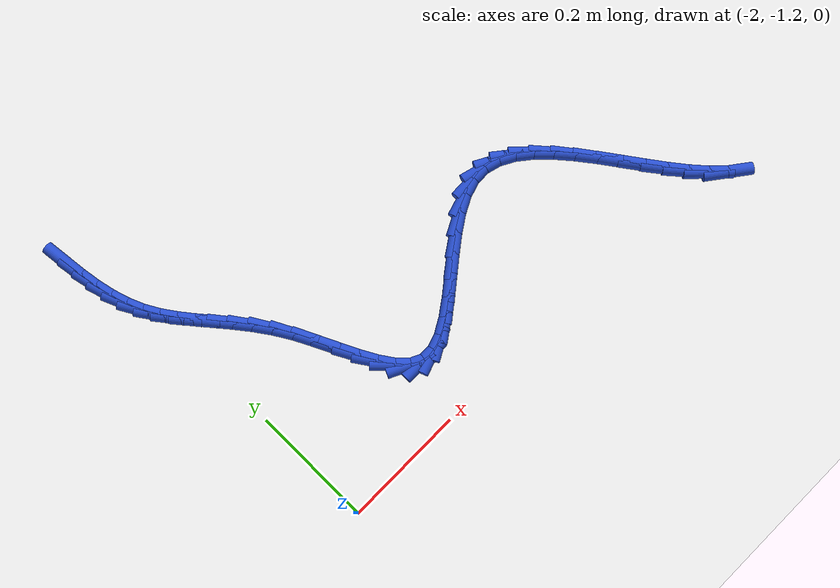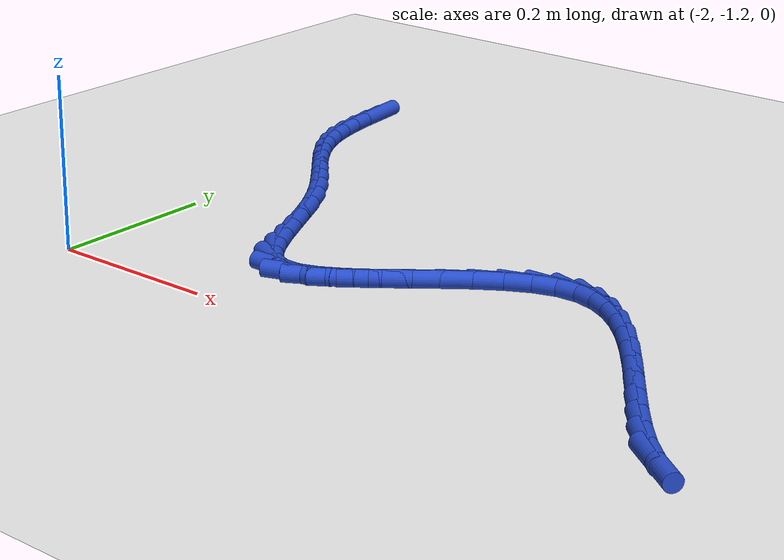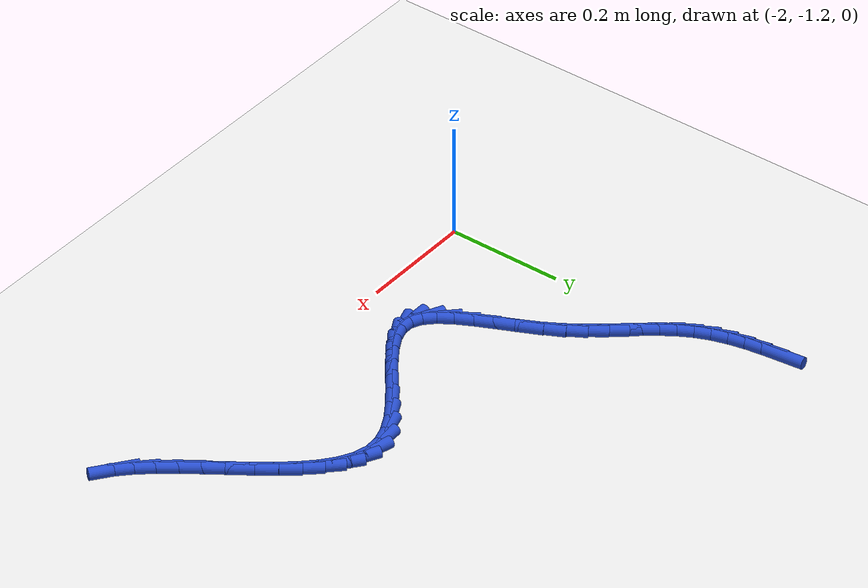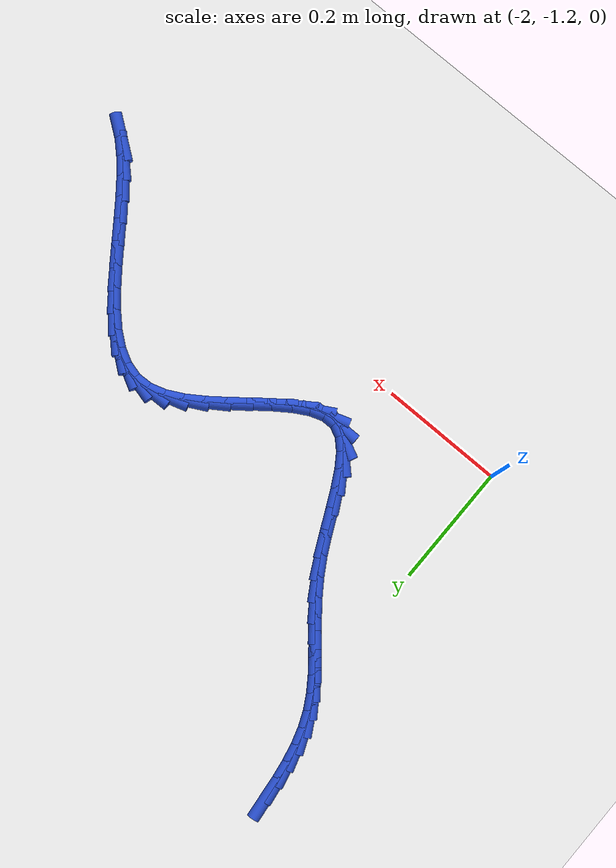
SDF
<sdf version="1.6">
 <world name="default">
  <model name="ground_plane">
   <static>1</static>
   <link name="link">
    <collision name="collision">
     <geometry><plane><normal>0 0 1</normal><size>100 100</size></plane></geometry>
     <surface><friction><ode><mu>100</mu><mu2>50</mu2></ode></friction></surface>
    </collision>
    <visual name="visual">
     <cast_shadows>0</cast_shadows>
     <geometry><plane><normal>0 0 1</normal><size>100 100</size></plane></geometry>
     <material>
      <script><uri>file://media/materials/scripts/gazebo.material</uri><name>Gazebo/WhiteGlow</name></script>
     </material>
    </visual>
   </link>
  </model>
  <model name="line">
   <link name="link_151">
    <pose>-2.048002126184385 -0.6055662148019829 0.01 0 1.57 -1.4592719948783006</pose>
    <collision name="collision">
     <geometry><cylinder><radius>0.01</radius><length>0.08</length></cylinder></geometry>
    </collision>
    <visual name="visual">
     <material>
      <script><name>Gazebo/Blue</name><uri>file://media/materials/scripts/gazebo.material</uri></script>
     </material>
     <geometry><cylinder><radius>0.01</radius><length>0.08</length></cylinder></geometry>
    </visual>
   </link>
   <link name="link_152">
    <pose>-2.0446755845035516 -0.635270394074086 0.01 0 1.57 -1.4155763640237753</pose>
    <collision name="collision">
     <geometry><cylinder><radius>0.01</radius><length>0.08</length></cylinder></geometry>
    </collision>
    <visual name="visual">
     <material>
      <script><name>Gazebo/Blue</name><uri>file://media/materials/scripts/gazebo.material</uri></script>
     </material>
     <geometry><cylinder><radius>0.01</radius><length>0.08</length></cylinder></geometry>
    </visual>
   </link>
   <link name="link_153">
    <pose>-2.0401504650627587 -0.6641888351204418 0.01 0 1.57 -1.3536229536578306</pose>
    <collision name="collision">
     <geometry><cylinder><radius>0.01</radius><length>0.08</length></cylinder></geometry>
    </collision>
    <visual name="visual">
     <material>
      <script><name>Gazebo/Blue</name><uri>file://media/materials/scripts/gazebo.material</uri></script>
     </material>
     <geometry><cylinder><radius>0.01</radius><length>0.08</length></cylinder></geometry>
    </visual>
   </link>
   <link name="link_154">
    <pose>-2.0339959599238697 -0.692081029527226 0.01 0 1.57 -1.2715339793312446</pose>
    <collision name="collision">
     <geometry><cylinder><radius>0.01</radius><length>0.08</length></cylinder></geometry>
    </collision>
    <visual name="visual">
     <material>
      <script><name>Gazebo/Blue</name><uri>file://media/materials/scripts/gazebo.material</uri></script>
     </material>
     <geometry><cylinder><radius>0.01</radius><length>0.08</length></cylinder></geometry>
    </visual>
   </link>
   <link name="link_155">
    <pose>-2.025781261148749 -0.7187064688806147 0.01 0 1.57 -1.1679099657223009</pose>
    <collision name="collision">
     <geometry><cylinder><radius>0.01</radius><length>0.08</length></cylinder></geometry>
    </collision>
    <visual name="visual">
     <material>
      <script><name>Gazebo/Blue</name><uri>file://media/materials/scripts/gazebo.material</uri></script>
     </material>
     <geometry><cylinder><radius>0.01</radius><length>0.08</length></cylinder></geometry>
    </visual>
   </link>
   <link name="link_156">
    <pose>-2.0150758121119563 -0.7438248562406098 0.01 0 1.57 -1.0537852789405744</pose>
    <collision name="collision">
     <geometry><cylinder><radius>0.01</radius><length>0.08</length></cylinder></geometry>
    </collision>
    <visual name="visual">
     <material>
      <script><name>Gazebo/Blue</name><uri>file://media/materials/scripts/gazebo.material</uri></script>
     </material>
     <geometry><cylinder><radius>0.01</radius><length>0.08</length></cylinder></geometry>
    </visual>
   </link>
   <link name="link_157">
    <pose>-2.0016776640807015 -0.7673882629240989 0.01 0 1.57 -0.9634488566566226</pose>
    <collision name="collision">
     <geometry><cylinder><radius>0.01</radius><length>0.08</length></cylinder></geometry>
    </collision>
    <visual name="visual">
     <material>
      <script><name>Gazebo/Blue</name><uri>file://media/materials/scripts/gazebo.material</uri></script>
     </material>
     <geometry><cylinder><radius>0.01</radius><length>0.08</length></cylinder></geometry>
    </visual>
   </link>
   <link name="link_158">
    <pose>-1.9860352534280554 -0.7898960442794605 0.01 0 1.57 -0.904833447612786</pose>
    <collision name="collision">
     <geometry><cylinder><radius>0.01</radius><length>0.08</length></cylinder></geometry>
    </collision>
    <visual name="visual">
     <material>
      <script><name>Gazebo/Blue</name><uri>file://media/materials/scripts/gazebo.material</uri></script>
     </material>
     <geometry><cylinder><radius>0.01</radius><length>0.08</length></cylinder></geometry>
    </visual>
   </link>
   <link name="link_159">
    <pose>-1.968711904618957 -0.8119442313284897 0.01 0 1.57 -0.8772889792458376</pose>
    <collision name="collision">
     <geometry><cylinder><radius>0.01</radius><length>0.08</length></cylinder></geometry>
    </collision>
    <visual name="visual">
     <material>
      <script><name>Gazebo/Blue</name><uri>file://media/materials/scripts/gazebo.material</uri></script>
     </material>
     <geometry><cylinder><radius>0.01</radius><length>0.08</length></cylinder></geometry>
    </visual>
   </link>
   <link name="link_160">
    <pose>-1.9502709421183484 -0.834128855092982 0.01 0 1.57 -0.8786989180588132</pose>
    <collision name="collision">
     <geometry><cylinder><radius>0.01</radius><length>0.08</length></cylinder></geometry>
    </collision>
    <visual name="visual">
     <material>
      <script><name>Gazebo/Blue</name><uri>file://media/materials/scripts/gazebo.material</uri></script>
     </material>
     <geometry><cylinder><radius>0.01</radius><length>0.08</length></cylinder></geometry>
    </visual>
   </link>
   <link name="link_161">
    <pose>-1.931275690391167 -0.8570459465947311 0.01 0 1.57 -0.9064584646098841</pose>
    <collision name="collision">
     <geometry><cylinder><radius>0.01</radius><length>0.08</length></cylinder></geometry>
    </collision>
    <visual name="visual">
     <material>
      <script><name>Gazebo/Blue</name><uri>file://media/materials/scripts/gazebo.material</uri></script>
     </material>
     <geometry><cylinder><radius>0.01</radius><length>0.08</length></cylinder></geometry>
    </visual>
   </link>
   <link name="link_162">
    <pose>-1.9122894739023553 -0.881291536855533 0.01 0 1.57 -0.9576440181246736</pose>
    <collision name="collision">
     <geometry><cylinder><radius>0.01</radius><length>0.08</length></cylinder></geometry>
    </collision>
    <visual name="visual">
     <material>
      <script><name>Gazebo/Blue</name><uri>file://media/materials/scripts/gazebo.material</uri></script>
     </material>
     <geometry><cylinder><radius>0.01</radius><length>0.08</length></cylinder></geometry>
    </visual>
   </link>
   <link name="link_163">
    <pose>-1.8938756171168518 -0.9074616568971822 0.01 0 1.57 -1.0283787974475684</pose>
    <collision name="collision">
     <geometry><cylinder><radius>0.01</radius><length>0.08</length></cylinder></geometry>
    </collision>
    <visual name="visual">
     <material>
      <script><name>Gazebo/Blue</name><uri>file://media/materials/scripts/gazebo.material</uri></script>
     </material>
     <geometry><cylinder><radius>0.01</radius><length>0.08</length></cylinder></geometry>
    </visual>
   </link>
   <link name="link_164">
    <pose>-1.8765911951082455 -0.9361389950350055 0.01 0 1.57 -1.0934740201440216</pose>
    <collision name="collision">
     <geometry><cylinder><radius>0.01</radius><length>0.08</length></cylinder></geometry>
    </collision>
    <visual name="visual">
     <material>
      <script><name>Gazebo/Blue</name><uri>file://media/materials/scripts/gazebo.material</uri></script>
     </material>
     <geometry><cylinder><radius>0.01</radius><length>0.08</length></cylinder></geometry>
    </visual>
   </link>
   <link name="link_165">
    <pose>-1.860597662410546 -0.9670615735305276 0.01 0 1.57 -1.1229495753236454</pose>
    <collision name="collision">
     <geometry><cylinder><radius>0.01</radius><length>0.08</length></cylinder></geometry>
    </collision>
    <visual name="visual">
     <material>
      <script><name>Gazebo/Blue</name><uri>file://media/materials/scripts/gazebo.material</uri></script>
     </material>
     <geometry><cylinder><radius>0.01</radius><length>0.08</length></cylinder></geometry>
    </visual>
   </link>
   <link name="link_166">
    <pose>-1.8454310794291806 -0.9986321725690404 0.01 0 1.57 -1.1175062051475055</pose>
    <collision name="collision">
     <geometry><cylinder><radius>0.01</radius><length>0.08</length></cylinder></geometry>
    </collision>
    <visual name="visual">
     <material>
      <script><name>Gazebo/Blue</name><uri>file://media/materials/scripts/gazebo.material</uri></script>
     </material>
     <geometry><cylinder><radius>0.01</radius><length>0.08</length></cylinder></geometry>
    </visual>
   </link>
   <link name="link_167">
    <pose>-1.830572259763093 -1.0291356181414872 0.01 0 1.57 -1.0728509777916235</pose>
    <collision name="collision">
     <geometry><cylinder><radius>0.01</radius><length>0.08</length></cylinder></geometry>
    </collision>
    <visual name="visual">
     <material>
      <script><name>Gazebo/Blue</name><uri>file://media/materials/scripts/gazebo.material</uri></script>
     </material>
     <geometry><cylinder><radius>0.01</radius><length>0.08</length></cylinder></geometry>
    </visual>
   </link>
   <link name="link_168">
    <pose>-1.815502017011229 -1.0568567362388122 0.01 0 1.57 -0.9733608106361504</pose>
    <collision name="collision">
     <geometry><cylinder><radius>0.01</radius><length>0.08</length></cylinder></geometry>
    </collision>
    <visual name="visual">
     <material>
      <script><name>Gazebo/Blue</name><uri>file://media/materials/scripts/gazebo.material</uri></script>
     </material>
     <geometry><cylinder><radius>0.01</radius><length>0.08</length></cylinder></geometry>
    </visual>
   </link>
   <link name="link_169">
    <pose>-1.7997011647725338 -1.0800803528519582 0.01 0 1.57 -0.7842324224687242</pose>
    <collision name="collision">
     <geometry><cylinder><radius>0.01</radius><length>0.08</length></cylinder></geometry>
    </collision>
    <visual name="visual">
     <material>
      <script><name>Gazebo/Blue</name><uri>file://media/materials/scripts/gazebo.material</uri></script>
     </material>
     <geometry><cylinder><radius>0.01</radius><length>0.08</length></cylinder></geometry>
    </visual>
   </link>
   <link name="link_170">
    <pose>-1.7826505166459545 -1.0970912939718689 0.01 0 1.57 -0.44966304437040805</pose>
    <collision name="collision">
     <geometry><cylinder><radius>0.01</radius><length>0.08</length></cylinder></geometry>
    </collision>
    <visual name="visual">
     <material>
      <script><name>Gazebo/Blue</name><uri>file://media/materials/scripts/gazebo.material</uri></script>
     </material>
     <geometry><cylinder><radius>0.01</radius><length>0.08</length></cylinder></geometry>
    </visual>
   </link>
   <link name="link_171">
    <pose>-1.7638308876311424 -1.1061743912815523 0.01 0 1.57 -0.0024894665198785526</pose>
    <collision name="collision">
     <geometry><cylinder><radius>0.01</radius><length>0.08</length></cylinder></geometry>
    </collision>
    <visual name="visual">
     <material>
      <script><name>Gazebo/Blue</name><uri>file://media/materials/scripts/gazebo.material</uri></script>
     </material>
     <geometry><cylinder><radius>0.01</radius><length>0.08</length></cylinder></geometry>
    </visual>
   </link>
   <link name="link_172">
    <pose>-1.7428737155164788 -1.1062265635676614 0.01 0 1.57 0.3277682510680645</pose>
    <collision name="collision">
     <geometry><cylinder><radius>0.01</radius><length>0.08</length></cylinder></geometry>
    </collision>
    <visual name="visual">
     <material>
      <script><name>Gazebo/Blue</name><uri>file://media/materials/scripts/gazebo.material</uri></script>
     </material>
     <geometry><cylinder><radius>0.01</radius><length>0.08</length></cylinder></geometry>
    </visual>
   </link>
   <link name="link_173">
    <pose>-1.7199753479913178 -1.0984403587711404 0.01 0 1.57 0.5156878822753701</pose>
    <collision name="collision">
     <geometry><cylinder><radius>0.01</radius><length>0.08</length></cylinder></geometry>
    </collision>
    <visual name="visual">
     <material>
      <script><name>Gazebo/Blue</name><uri>file://media/materials/scripts/gazebo.material</uri></script>
     </material>
     <geometry><cylinder><radius>0.01</radius><length>0.08</length></cylinder></geometry>
    </visual>
   </link>
   <link name="link_174">
    <pose>-1.6954645440787448 -1.084546405892506 0.01 0 1.57 0.6162964483420006</pose>
    <collision name="collision">
     <geometry><cylinder><radius>0.01</radius><length>0.08</length></cylinder></geometry>
    </collision>
    <visual name="visual">
     <material>
      <script><name>Gazebo/Blue</name><uri>file://media/materials/scripts/gazebo.material</uri></script>
     </material>
     <geometry><cylinder><radius>0.01</radius><length>0.08</length></cylinder></geometry>
    </visual>
   </link>
   <link name="link_175">
    <pose>-1.6696700628018462 -1.0662753339322746 0.01 0 1.57 0.6636576926876798</pose>
    <collision name="collision">
     <geometry><cylinder><radius>0.01</radius><length>0.08</length></cylinder></geometry>
    </collision>
    <visual name="visual">
     <material>
      <script><name>Gazebo/Blue</name><uri>file://media/materials/scripts/gazebo.material</uri></script>
     </material>
     <geometry><cylinder><radius>0.01</radius><length>0.08</length></cylinder></geometry>
    </visual>
   </link>
   <link name="link_176">
    <pose>-1.6429206631837088 -1.0453577718909632 0.01 0 1.57 0.6732462824696522</pose>
    <collision name="collision">
     <geometry><cylinder><radius>0.01</radius><length>0.08</length></cylinder></geometry>
    </collision>
    <visual name="visual">
     <material>
      <script><name>Gazebo/Blue</name><uri>file://media/materials/scripts/gazebo.material</uri></script>
     </material>
     <geometry><cylinder><radius>0.01</radius><length>0.08</length></cylinder></geometry>
    </visual>
   </link>
   <link name="link_177">
    <pose>-1.615545104247419 -1.0235243487690888 0.01 0 1.57 0.6495773302209041</pose>
    <collision name="collision">
     <geometry><cylinder><radius>0.01</radius><length>0.08</length></cylinder></geometry>
    </collision>
    <visual name="visual">
     <material>
      <script><name>Gazebo/Blue</name><uri>file://media/materials/scripts/gazebo.material</uri></script>
     </material>
     <geometry><cylinder><radius>0.01</radius><length>0.08</length></cylinder></geometry>
    </visual>
   </link>
   <link name="link_178">
    <pose>-1.5878721450160636 -1.0025056935671681 0.01 0 1.57 0.5891419401360225</pose>
    <collision name="collision">
     <geometry><cylinder><radius>0.01</radius><length>0.08</length></cylinder></geometry>
    </collision>
    <visual name="visual">
     <material>
      <script><name>Gazebo/Blue</name><uri>file://media/materials/scripts/gazebo.material</uri></script>
     </material>
     <geometry><cylinder><radius>0.01</radius><length>0.08</length></cylinder></geometry>
    </visual>
   </link>
   <link name="link_179">
    <pose>-1.5602305445127298 -0.9840324352857184 0.01 0 1.57 0.47983262326694714</pose>
    <collision name="collision">
     <geometry><cylinder><radius>0.01</radius><length>0.08</length></cylinder></geometry>
    </collision>
    <visual name="visual">
     <material>
      <script><name>Gazebo/Blue</name><uri>file://media/materials/scripts/gazebo.material</uri></script>
     </material>
     <geometry><cylinder><radius>0.01</radius><length>0.08</length></cylinder></geometry>
    </visual>
   </link>
   <link name="link_180">
    <pose>-1.5329490617605028 -0.9698352029252559 0.01 0 1.57 0.29878187044574817</pose>
    <collision name="collision">
     <geometry><cylinder><radius>0.01</radius><length>0.08</length></cylinder></geometry>
    </collision>
    <visual name="visual">
     <material>
      <script><name>Gazebo/Blue</name><uri>file://media/materials/scripts/gazebo.material</uri></script>
     </material>
     <geometry><cylinder><radius>0.01</radius><length>0.08</length></cylinder></geometry>
    </visual>
   </link>
   <link name="link_181">
    <pose>-1.506356455782469 -0.9616446254862974 0.01 0 1.57 0.027038703086917186</pose>
    <collision name="collision">
     <geometry><cylinder><radius>0.01</radius><length>0.08</length></cylinder></geometry>
    </collision>
    <visual name="visual">
     <material>
      <script><name>Gazebo/Blue</name><uri>file://media/materials/scripts/gazebo.material</uri></script>
     </material>
     <geometry><cylinder><radius>0.01</radius><length>0.08</length></cylinder></geometry>
    </visual>
   </link>
   <link name="link_182">
    <pose>-1.4807419589899884 -0.9609518738829811 0.01 0 1.57 -0.26076581475570576</pose>
    <collision name="collision">
     <geometry><cylinder><radius>0.01</radius><length>0.08</length></cylinder></geometry>
    </collision>
    <visual name="visual">
     <material>
      <script><name>Gazebo/Blue</name><uri>file://media/materials/scripts/gazebo.material</uri></script>
     </material>
     <geometry><cylinder><radius>0.01</radius><length>0.08</length></cylinder></geometry>
    </visual>
   </link>
   <link name="link_183">
    <pose>-1.456110311908894 -0.967524624919511 0.01 0 1.57 -0.4956583328175532</pose>
    <collision name="collision">
     <geometry><cylinder><radius>0.01</radius><length>0.08</length></cylinder></geometry>
    </collision>
    <visual name="visual">
     <material>
      <script><name>Gazebo/Blue</name><uri>file://media/materials/scripts/gazebo.material</uri></script>
     </material>
     <geometry><cylinder><radius>0.01</radius><length>0.08</length></cylinder></geometry>
    </visual>
   </link>
   <link name="link_184">
    <pose>-1.4323416722677544 -0.9803758143048037 0.01 0 1.57 -0.6672436631969286</pose>
    <collision name="collision">
     <geometry><cylinder><radius>0.01</radius><length>0.08</length></cylinder></geometry>
    </collision>
    <visual name="visual">
     <material>
      <script><name>Gazebo/Blue</name><uri>file://media/materials/scripts/gazebo.material</uri></script>
     </material>
     <geometry><cylinder><radius>0.01</radius><length>0.08</length></cylinder></geometry>
    </visual>
   </link>
   <link name="link_185">
    <pose>-1.409315670215645 -0.9985151815928135 0.01 0 1.57 -0.7861463717370035</pose>
    <collision name="collision">
     <geometry><cylinder><radius>0.01</radius><length>0.08</length></cylinder></geometry>
    </collision>
    <visual name="visual">
     <material>
      <script><name>Gazebo/Blue</name><uri>file://media/materials/scripts/gazebo.material</uri></script>
     </material>
     <geometry><cylinder><radius>0.01</radius><length>0.08</length></cylinder></geometry>
    </visual>
   </link>
   <link name="link_186">
    <pose>-1.3869119359016402 -1.020952466337493 0.01 0 1.57 -0.8658821700720187</pose>
    <collision name="collision">
     <geometry><cylinder><radius>0.01</radius><length>0.08</length></cylinder></geometry>
    </collision>
    <visual name="visual">
     <material>
      <script><name>Gazebo/Blue</name><uri>file://media/materials/scripts/gazebo.material</uri></script>
     </material>
     <geometry><cylinder><radius>0.01</radius><length>0.08</length></cylinder></geometry>
    </visual>
   </link>
   <link name="link_187">
    <pose>-1.3650100994748142 -1.0466974080927953 0.01 0 1.57 -0.9165823445479994</pose>
    <collision name="collision">
     <geometry><cylinder><radius>0.01</radius><length>0.08</length></cylinder></geometry>
    </collision>
    <visual name="visual">
     <material>
      <script><name>Gazebo/Blue</name><uri>file://media/materials/scripts/gazebo.material</uri></script>
     </material>
     <geometry><cylinder><radius>0.01</radius><length>0.08</length></cylinder></geometry>
    </visual>
   </link>
   <link name="link_188">
    <pose>-1.3434897910842418 -1.0747597464126757 0.01 0 1.57 -0.9445643891131926</pose>
    <collision name="collision">
     <geometry><cylinder><radius>0.01</radius><length>0.08</length></cylinder></geometry>
    </collision>
    <visual name="visual">
     <material>
      <script><name>Gazebo/Blue</name><uri>file://media/materials/scripts/gazebo.material</uri></script>
     </material>
     <geometry><cylinder><radius>0.01</radius><length>0.08</length></cylinder></geometry>
    </visual>
   </link>
   <link name="link_189">
    <pose>-1.322230640878998 -1.1041492208510846 0.01 0 1.57 -0.9531074926851137</pose>
    <collision name="collision">
     <geometry><cylinder><radius>0.01</radius><length>0.08</length></cylinder></geometry>
    </collision>
    <visual name="visual">
     <material>
      <script><name>Gazebo/Blue</name><uri>file://media/materials/scripts/gazebo.material</uri></script>
     </material>
     <geometry><cylinder><radius>0.01</radius><length>0.08</length></cylinder></geometry>
    </visual>
   </link>
   <link name="link_190">
    <pose>-1.3011122790081577 -1.1338755709619772 0.01 0 1.57 -0.943036388298824</pose>
    <collision name="collision">
     <geometry><cylinder><radius>0.01</radius><length>0.08</length></cylinder></geometry>
    </collision>
    <visual name="visual">
     <material>
      <script><name>Gazebo/Blue</name><uri>file://media/materials/scripts/gazebo.material</uri></script>
     </material>
     <geometry><cylinder><radius>0.01</radius><length>0.08</length></cylinder></geometry>
    </visual>
   </link>
   <link name="link_191">
    <pose>-1.2800143356207951 -1.1629485362993057 0.01 0 1.57 -0.9128504046650009</pose>
    <collision name="collision">
     <geometry><cylinder><radius>0.01</radius><length>0.08</length></cylinder></geometry>
    </collision>
    <visual name="visual">
     <material>
      <script><name>Gazebo/Blue</name><uri>file://media/materials/scripts/gazebo.material</uri></script>
     </material>
     <geometry><cylinder><radius>0.01</radius><length>0.08</length></cylinder></geometry>
    </visual>
   </link>
   <link name="link_192">
    <pose>-1.2588164408659848 -1.190377856417024 0.01 0 1.57 -0.8583464642651957</pose>
    <collision name="collision">
     <geometry><cylinder><radius>0.01</radius><length>0.08</length></cylinder></geometry>
    </collision>
    <visual name="visual">
     <material>
      <script><name>Gazebo/Blue</name><uri>file://media/materials/scripts/gazebo.material</uri></script>
     </material>
     <geometry><cylinder><radius>0.01</radius><length>0.08</length></cylinder></geometry>
    </visual>
   </link>
   <link name="link_193">
    <pose>-1.2373982248928024 -1.2151732708690863 0.01 0 1.57 -0.771710302366833</pose>
    <collision name="collision">
     <geometry><cylinder><radius>0.01</radius><length>0.08</length></cylinder></geometry>
    </collision>
    <visual name="visual">
     <material>
      <script><name>Gazebo/Blue</name><uri>file://media/materials/scripts/gazebo.material</uri></script>
     </material>
     <geometry><cylinder><radius>0.01</radius><length>0.08</length></cylinder></geometry>
    </visual>
   </link>
   <link name="link_194">
    <pose>-1.2156393178503206 -1.2363445192094438 0.01 0 1.57 -0.6403786670838396</pose>
    <collision name="collision">
     <geometry><cylinder><radius>0.01</radius><length>0.08</length></cylinder></geometry>
    </collision>
    <visual name="visual">
     <material>
      <script><name>Gazebo/Blue</name><uri>file://media/materials/scripts/gazebo.material</uri></script>
     </material>
     <geometry><cylinder><radius>0.01</radius><length>0.08</length></cylinder></geometry>
    </visual>
   </link>
  </model>
 </world>
</sdf>
